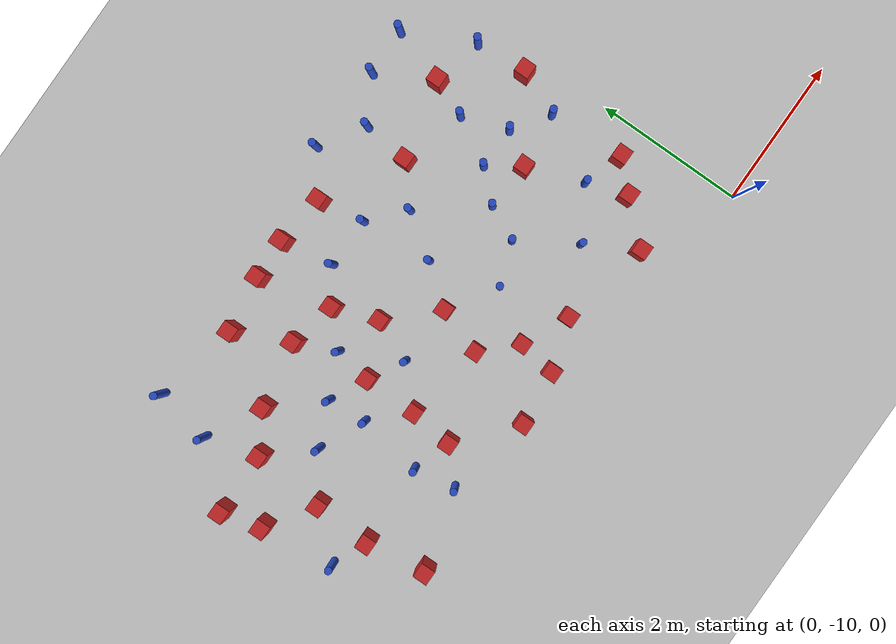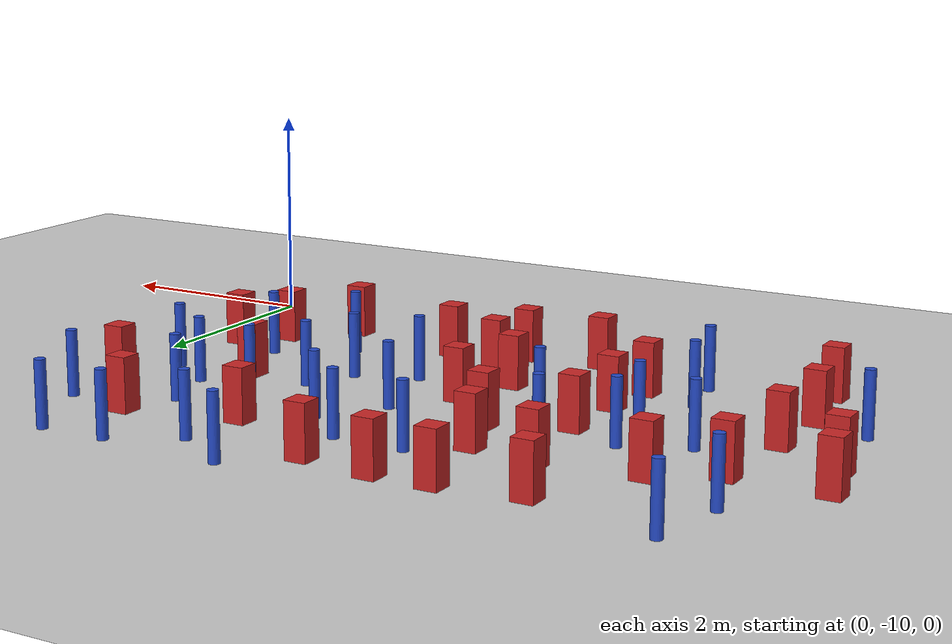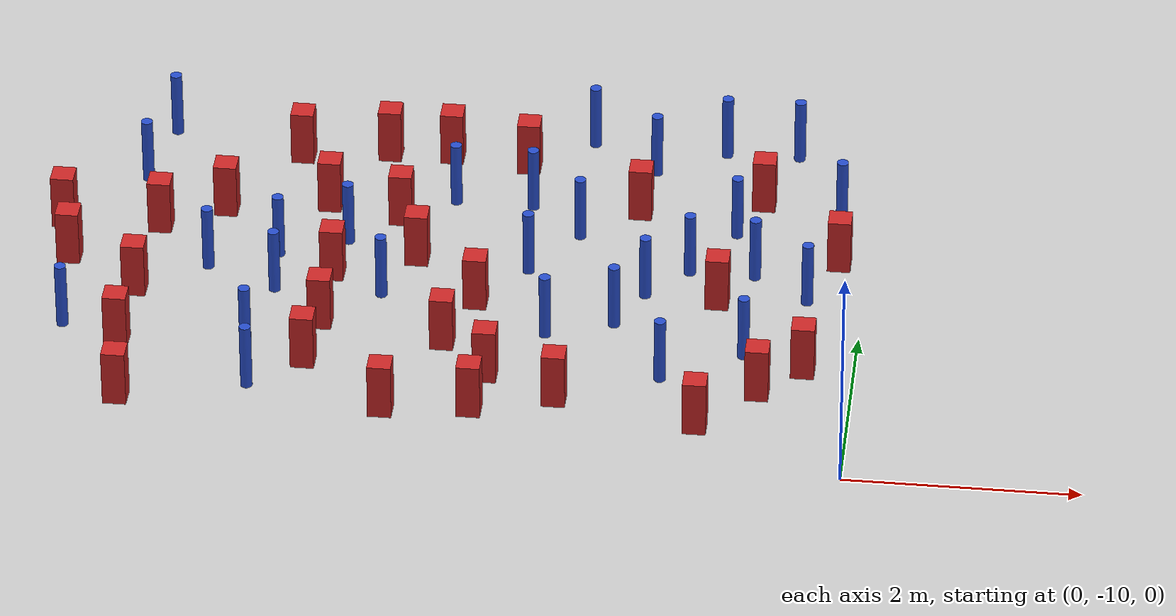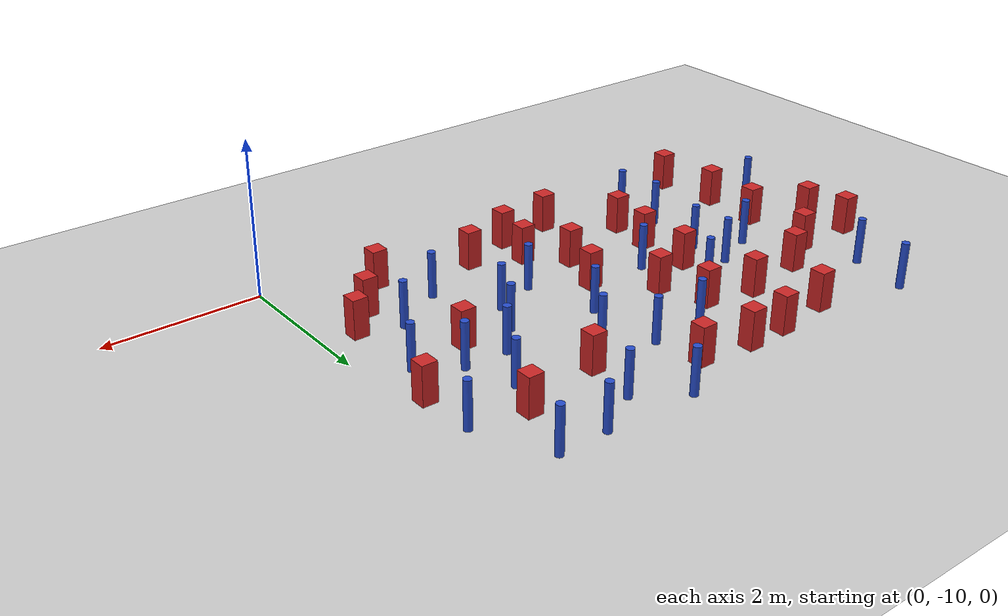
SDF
<sdf version="1.6">
 <world name="default">
  <model name="ground_plane">
   <static>1</static>
   <link name="link">
    <collision name="collision">
     <geometry><plane><normal>0 0 1</normal><size>100 100</size></plane></geometry>
     <surface><friction><ode><mu>100</mu><mu2>50</mu2></ode></friction></surface>
    </collision>
    <visual name="visual">
     <cast_shadows>0</cast_shadows>
     <geometry><plane><normal>0 0 1</normal><size>100 100</size></plane></geometry>
     <material>
      <ambient>1.0 1.0 1.0 1.0</ambient>
      <diffuse>0.8 0.8 0.8 1.0</diffuse>
      <specular>0.01 0.01 0.01 1.000000</specular>
     </material>
    </visual>
   </link>
  </model>
  <model name="pole_obstacle3">
   <static>true</static>
   <pose>-0.286532830113 -6.21267188489 7.38925637345e-09 -8.47170692799e-08 1.24976765096e-08 -1.74513093014e-07</pose>
   <link name="link">
    <pose>0 0 0.3 0 -0 0</pose>
    <inertial>
     <mass>1</mass>
     <inertia><ixx>0.145833</ixx><ixy>0</ixy><ixz>0</ixz><iyy>0.145833</iyy><iyz>0</iyz><izz>0.125</izz></inertia>
    </inertial>
    <collision name="collision">
     <geometry><cylinder><radius>0.05</radius><length>.6</length></cylinder></geometry>
    </collision>
    <visual name="visual">
     <geometry><cylinder><radius>0.05</radius><length>.6</length></cylinder></geometry>
     <material>
      <script><name>Gazebo/Blue</name><uri>file://media/materials/scripts/gazebo.material</uri></script>
     </material>
    </visual>
   </link>
  </model>
  <model name="pole_obstacle4">
   <static>true</static>
   <pose>-2.08851028054 -7.99821689099 7.38925637345e-09 -8.47170692793e-08 1.24976764454e-08 -1.74513093039e-07</pose>
   <link name="link">
    <pose>0 0 0.3 0 -0 0</pose>
    <inertial>
     <mass>1</mass>
     <inertia><ixx>0.145833</ixx><ixy>0</ixy><ixz>0</ixz><iyy>0.145833</iyy><iyz>0</iyz><izz>0.125</izz></inertia>
    </inertial>
    <collision name="collision">
     <geometry><cylinder><radius>0.05</radius><length>.6</length></cylinder></geometry>
    </collision>
    <visual name="visual">
     <geometry><cylinder><radius>0.05</radius><length>.6</length></cylinder></geometry>
     <material>
      <script><name>Gazebo/Blue</name><uri>file://media/materials/scripts/gazebo.material</uri></script>
     </material>
    </visual>
   </link>
  </model>
  <model name="pole_obstacle5">
   <static>true</static>
   <pose>-5.07244034275 -9.1984680818 7.38925637345e-09 -8.471706928e-08 1.24976765081e-08 -1.74513093015e-07</pose>
   <link name="link">
    <pose>0 0 0.3 0 -0 0</pose>
    <inertial>
     <mass>1</mass>
     <inertia><ixx>0.145833</ixx><ixy>0</ixy><ixz>0</ixz><iyy>0.145833</iyy><iyz>0</iyz><izz>0.125</izz></inertia>
    </inertial>
    <collision name="collision">
     <geometry><cylinder><radius>0.05</radius><length>.6</length></cylinder></geometry>
    </collision>
    <visual name="visual">
     <geometry><cylinder><radius>0.05</radius><length>.6</length></cylinder></geometry>
     <material>
      <script><name>Gazebo/Blue</name><uri>file://media/materials/scripts/gazebo.material</uri></script>
     </material>
    </visual>
   </link>
  </model>
  <model name="pole_obstacle9">
   <static>true</static>
   <pose>-6.22438378914 -5.47436945772 7.38925637345e-09 -8.47170692796e-08 1.24976764786e-08 -1.74513093032e-07</pose>
   <link name="link">
    <pose>0 0 0.3 0 -0 0</pose>
    <inertial>
     <mass>1</mass>
     <inertia><ixx>0.145833</ixx><ixy>0</ixy><ixz>0</ixz><iyy>0.145833</iyy><iyz>0</iyz><izz>0.125</izz></inertia>
    </inertial>
    <collision name="collision">
     <geometry><cylinder><radius>0.05</radius><length>.6</length></cylinder></geometry>
    </collision>
    <visual name="visual">
     <geometry><cylinder><radius>0.05</radius><length>.6</length></cylinder></geometry>
     <material>
      <script><name>Gazebo/Blue</name><uri>file://media/materials/scripts/gazebo.material</uri></script>
     </material>
    </visual>
   </link>
  </model>
  <model name="square_post_obstacle9">
   <static>true</static>
   <pose>-5.61328121798 -6.63471484839 1.91545236811e-07 -7.35059704564e-06 1.12565212e-07 2.39332434364e-05</pose>
   <link name="link">
    <pose>0 0 0.25 0 -0 0</pose>
    <inertial>
     <mass>100</mass>
     <inertia>
      <ixx>0.166667</ixx>
      <ixy>0</ixy>
      <ixz>0</ixz>
      <iyy>0.166667</iyy>
      <iyz>0</iyz>
      <izz>0.166667</izz>
     </inertia>
    </inertial>
    <collision name="collision"><geometry><box><size>.2 .2 .5</size></box></geometry></collision>
    <visual name="visual">
     <geometry><box><size>.2 .2 .5</size></box></geometry>
     <material>
      <script><name>Gazebo/Red</name><uri>file://media/materials/scripts/gazebo.material</uri></script>
     </material>
    </visual>
   </link>
  </model>
  <model name="square_post_obstacle14">
   <static>true</static>
   <pose>-3.87301807187 -7.210273516 1.91545236811e-07 -7.35059704564e-06 1.12565212e-07 2.39332434364e-05</pose>
   <link name="link">
    <pose>0 0 0.25 0 -0 0</pose>
    <inertial>
     <mass>100</mass>
     <inertia>
      <ixx>0.166667</ixx>
      <ixy>0</ixy>
      <ixz>0</ixz>
      <iyy>0.166667</iyy>
      <iyz>0</iyz>
      <izz>0.166667</izz>
     </inertia>
    </inertial>
    <collision name="collision"><geometry><box><size>.2 .2 .5</size></box></geometry></collision>
    <visual name="visual">
     <geometry><box><size>.2 .2 .5</size></box></geometry>
     <material>
      <script><name>Gazebo/Red</name><uri>file://media/materials/scripts/gazebo.material</uri></script>
     </material>
    </visual>
   </link>
  </model>
  <model name="pole_obstacle27">
   <static>true</static>
   <pose>-2.65658160371 -8.20769209882 7.38925637345e-09 -8.47170692793e-08 1.24976764408e-08 -1.74513093041e-07</pose>
   <link name="link">
    <pose>0 0 0.3 0 -0 0</pose>
    <inertial>
     <mass>1</mass>
     <inertia><ixx>0.145833</ixx><ixy>0</ixy><ixz>0</ixz><iyy>0.145833</iyy><iyz>0</iyz><izz>0.125</izz></inertia>
    </inertial>
    <collision name="collision">
     <geometry><cylinder><radius>0.05</radius><length>.6</length></cylinder></geometry>
    </collision>
    <visual name="visual">
     <geometry><cylinder><radius>0.05</radius><length>.6</length></cylinder></geometry>
     <material>
      <script><name>Gazebo/Blue</name><uri>file://media/materials/scripts/gazebo.material</uri></script>
     </material>
    </visual>
   </link>
  </model>
  <model name="pole_obstacle31">
   <static>true</static>
   <pose>-5.06959323173 -7.25917310305 7.38925637345e-09 -8.47170692796e-08 1.24976764786e-08 -1.74513093032e-07</pose>
   <link name="link">
    <pose>0 0 0.3 0 -0 0</pose>
    <inertial>
     <mass>1</mass>
     <inertia><ixx>0.145833</ixx><ixy>0</ixy><ixz>0</ixz><iyy>0.145833</iyy><iyz>0</iyz><izz>0.125</izz></inertia>
    </inertial>
    <collision name="collision">
     <geometry><cylinder><radius>0.05</radius><length>.6</length></cylinder></geometry>
    </collision>
    <visual name="visual">
     <geometry><cylinder><radius>0.05</radius><length>.6</length></cylinder></geometry>
     <material>
      <script><name>Gazebo/Blue</name><uri>file://media/materials/scripts/gazebo.material</uri></script>
     </material>
    </visual>
   </link>
  </model>
  <model name="pole_obstacle34">
   <static>true</static>
   <pose>-5.1619256779 -8.64343404357 7.38925637345e-09 -8.471706928e-08 1.24976765081e-08 -1.74513093015e-07</pose>
   <link name="link">
    <pose>0 0 0.3 0 -0 0</pose>
    <inertial>
     <mass>1</mass>
     <inertia><ixx>0.145833</ixx><ixy>0</ixy><ixz>0</ixz><iyy>0.145833</iyy><iyz>0</iyz><izz>0.125</izz></inertia>
    </inertial>
    <collision name="collision">
     <geometry><cylinder><radius>0.05</radius><length>.6</length></cylinder></geometry>
    </collision>
    <visual name="visual">
     <geometry><cylinder><radius>0.05</radius><length>.6</length></cylinder></geometry>
     <material>
      <script><name>Gazebo/Blue</name><uri>file://media/materials/scripts/gazebo.material</uri></script>
     </material>
    </visual>
   </link>
  </model>
  <model name="pole_obstacle37">
   <static>true</static>
   <pose>-6.75819118113 -8.48501316343 7.38925637345e-09 -8.471706928e-08 1.24976765081e-08 -1.74513093015e-07</pose>
   <link name="link">
    <pose>0 0 0.3 0 -0 0</pose>
    <inertial>
     <mass>1</mass>
     <inertia><ixx>0.145833</ixx><ixy>0</ixy><ixz>0</ixz><iyy>0.145833</iyy><iyz>0</iyz><izz>0.125</izz></inertia>
    </inertial>
    <collision name="collision">
     <geometry><cylinder><radius>0.05</radius><length>.6</length></cylinder></geometry>
    </collision>
    <visual name="visual">
     <geometry><cylinder><radius>0.05</radius><length>.6</length></cylinder></geometry>
     <material>
      <script><name>Gazebo/Blue</name><uri>file://media/materials/scripts/gazebo.material</uri></script>
     </material>
    </visual>
   </link>
  </model>
  <model name="pole_obstacle40">
   <static>true</static>
   <pose>-1.8678572007 -7.54005335014 7.38925637345e-09 -8.47170692799e-08 1.24976765033e-08 -1.74513093018e-07</pose>
   <link name="link">
    <pose>0 0 0.3 0 -0 0</pose>
    <inertial>
     <mass>1</mass>
     <inertia><ixx>0.145833</ixx><ixy>0</ixy><ixz>0</ixz><iyy>0.145833</iyy><iyz>0</iyz><izz>0.125</izz></inertia>
    </inertial>
    <collision name="collision">
     <geometry><cylinder><radius>0.05</radius><length>.6</length></cylinder></geometry>
    </collision>
    <visual name="visual">
     <geometry><cylinder><radius>0.05</radius><length>.6</length></cylinder></geometry>
     <material>
      <script><name>Gazebo/Blue</name><uri>file://media/materials/scripts/gazebo.material</uri></script>
     </material>
    </visual>
   </link>
  </model>
  <model name="pole_obstacle42">
   <static>true</static>
   <pose>-2.51475774408 -6.7155393524 7.38925637345e-09 -8.47170692798e-08 1.24976765033e-08 -1.74513093019e-07</pose>
   <link name="link">
    <pose>0 0 0.3 0 -0 0</pose>
    <inertial>
     <mass>1</mass>
     <inertia><ixx>0.145833</ixx><ixy>0</ixy><ixz>0</ixz><iyy>0.145833</iyy><iyz>0</iyz><izz>0.125</izz></inertia>
    </inertial>
    <collision name="collision">
     <geometry><cylinder><radius>0.05</radius><length>.6</length></cylinder></geometry>
    </collision>
    <visual name="visual">
     <geometry><cylinder><radius>0.05</radius><length>.6</length></cylinder></geometry>
     <material>
      <script><name>Gazebo/Blue</name><uri>file://media/materials/scripts/gazebo.material</uri></script>
     </material>
    </visual>
   </link>
  </model>
  <model name="square_post_obstacle32">
   <static>true</static>
   <pose>-4.6437594725 -8.8081123449 1.91545236811e-07 -7.35059704564e-06 1.12565212e-07 2.39332434364e-05</pose>
   <link name="link">
    <pose>0 0 0.25 0 -0 0</pose>
    <inertial>
     <mass>100</mass>
     <inertia>
      <ixx>0.166667</ixx>
      <ixy>0</ixy>
      <ixz>0</ixz>
      <iyy>0.166667</iyy>
      <iyz>0</iyz>
      <izz>0.166667</izz>
     </inertia>
    </inertial>
    <collision name="collision"><geometry><box><size>.2 .2 .5</size></box></geometry></collision>
    <visual name="visual">
     <geometry><box><size>.2 .2 .5</size></box></geometry>
     <material>
      <script><name>Gazebo/Red</name><uri>file://media/materials/scripts/gazebo.material</uri></script>
     </material>
    </visual>
   </link>
  </model>
  <model name="pole_obstacle43">
   <static>true</static>
   <pose>-2.90140061625 -7.28194770969 7.38925637345e-09 -8.47170692798e-08 1.24976765033e-08 -1.74513093019e-07</pose>
   <link name="link">
    <pose>0 0 0.3 0 -0 0</pose>
    <inertial>
     <mass>1</mass>
     <inertia><ixx>0.145833</ixx><ixy>0</ixy><ixz>0</ixz><iyy>0.145833</iyy><iyz>0</iyz><izz>0.125</izz></inertia>
    </inertial>
    <collision name="collision">
     <geometry><cylinder><radius>0.05</radius><length>.6</length></cylinder></geometry>
    </collision>
    <visual name="visual">
     <geometry><cylinder><radius>0.05</radius><length>.6</length></cylinder></geometry>
     <material>
      <script><name>Gazebo/Blue</name><uri>file://media/materials/scripts/gazebo.material</uri></script>
     </material>
    </visual>
   </link>
  </model>
  <model name="square_post_obstacle36">
   <static>true</static>
   <pose>-1.24274483407 -7.58987991676 1.91545236811e-07 -7.35059704564e-06 1.12565212e-07 2.39332434364e-05</pose>
   <link name="link">
    <pose>0 0 0.25 0 -0 0</pose>
    <inertial>
     <mass>100</mass>
     <inertia>
      <ixx>0.166667</ixx>
      <ixy>0</ixy>
      <ixz>0</ixz>
      <iyy>0.166667</iyy>
      <iyz>0</iyz>
      <izz>0.166667</izz>
     </inertia>
    </inertial>
    <collision name="collision"><geometry><box><size>.2 .2 .5</size></box></geometry></collision>
    <visual name="visual">
     <geometry><box><size>.2 .2 .5</size></box></geometry>
     <material>
      <script><name>Gazebo/Red</name><uri>file://media/materials/scripts/gazebo.material</uri></script>
     </material>
    </visual>
   </link>
  </model>
  <model name="pole_obstacle48">
   <static>true</static>
   <pose>-2.96846353193 -6.31269912293 7.38925637345e-09 -8.47170692798e-08 1.24976765033e-08 -1.74513093019e-07</pose>
   <link name="link">
    <pose>0 0 0.3 0 -0 0</pose>
    <inertial>
     <mass>1</mass>
     <inertia><ixx>0.145833</ixx><ixy>0</ixy><ixz>0</ixz><iyy>0.145833</iyy><iyz>0</iyz><izz>0.125</izz></inertia>
    </inertial>
    <collision name="collision">
     <geometry><cylinder><radius>0.05</radius><length>.6</length></cylinder></geometry>
    </collision>
    <visual name="visual">
     <geometry><cylinder><radius>0.05</radius><length>.6</length></cylinder></geometry>
     <material>
      <script><name>Gazebo/Blue</name><uri>file://media/materials/scripts/gazebo.material</uri></script>
     </material>
    </visual>
   </link>
  </model>
  <model name="pole_obstacle49">
   <static>true</static>
   <pose>-1.51936619969 -7.16205877304 7.38925637345e-09 -8.47170692799e-08 1.24976765033e-08 -1.74513093018e-07</pose>
   <link name="link">
    <pose>0 0 0.3 0 -0 0</pose>
    <inertial>
     <mass>1</mass>
     <inertia><ixx>0.145833</ixx><ixy>0</ixy><ixz>0</ixz><iyy>0.145833</iyy><iyz>0</iyz><izz>0.125</izz></inertia>
    </inertial>
    <collision name="collision">
     <geometry><cylinder><radius>0.05</radius><length>.6</length></cylinder></geometry>
    </collision>
    <visual name="visual">
     <geometry><cylinder><radius>0.05</radius><length>.6</length></cylinder></geometry>
     <material>
      <script><name>Gazebo/Blue</name><uri>file://media/materials/scripts/gazebo.material</uri></script>
     </material>
    </visual>
   </link>
  </model>
  <model name="square_post_obstacle40">
   <static>true</static>
   <pose>-5.06158124552 -5.74783284415 1.91545236811e-07 -7.35059704564e-06 1.12565212e-07 2.39332434364e-05</pose>
   <link name="link">
    <pose>0 0 0.25 0 -0 0</pose>
    <inertial>
     <mass>100</mass>
     <inertia>
      <ixx>0.166667</ixx>
      <ixy>0</ixy>
      <ixz>0</ixz>
      <iyy>0.166667</iyy>
      <iyz>0</iyz>
      <izz>0.166667</izz>
     </inertia>
    </inertial>
    <collision name="collision"><geometry><box><size>.2 .2 .5</size></box></geometry></collision>
    <visual name="visual">
     <geometry><box><size>.2 .2 .5</size></box></geometry>
     <material>
      <script><name>Gazebo/Red</name><uri>file://media/materials/scripts/gazebo.material</uri></script>
     </material>
    </visual>
   </link>
  </model>
  <model name="square_post_obstacle41">
   <static>true</static>
   <pose>-0.250888118481 -6.90935245224 1.91545236811e-07 -7.35059704564e-06 1.12565212e-07 2.39332434364e-05</pose>
   <link name="link">
    <pose>0 0 0.25 0 -0 0</pose>
    <inertial>
     <mass>100</mass>
     <inertia>
      <ixx>0.166667</ixx>
      <ixy>0</ixy>
      <ixz>0</ixz>
      <iyy>0.166667</iyy>
      <iyz>0</iyz>
      <izz>0.166667</izz>
     </inertia>
    </inertial>
    <collision name="collision"><geometry><box><size>.2 .2 .5</size></box></geometry></collision>
    <visual name="visual">
     <geometry><box><size>.2 .2 .5</size></box></geometry>
     <material>
      <script><name>Gazebo/Red</name><uri>file://media/materials/scripts/gazebo.material</uri></script>
     </material>
    </visual>
   </link>
  </model>
  <model name="square_post_obstacle45">
   <static>true</static>
   <pose>-4.72384394061 -6.47394857997 1.91545236811e-07 -7.35059704564e-06 1.12565212e-07 2.39332434364e-05</pose>
   <link name="link">
    <pose>0 0 0.25 0 -0 0</pose>
    <inertial>
     <mass>100</mass>
     <inertia>
      <ixx>0.166667</ixx>
      <ixy>0</ixy>
      <ixz>0</ixz>
      <iyy>0.166667</iyy>
      <iyz>0</iyz>
      <izz>0.166667</izz>
     </inertia>
    </inertial>
    <collision name="collision"><geometry><box><size>.2 .2 .5</size></box></geometry></collision>
    <visual name="visual">
     <geometry><box><size>.2 .2 .5</size></box></geometry>
     <material>
      <script><name>Gazebo/Red</name><uri>file://media/materials/scripts/gazebo.material</uri></script>
     </material>
    </visual>
   </link>
  </model>
  <model name="square_post_obstacle47">
   <static>true</static>
   <pose>-3.75698951049 -5.62028620985 1.91545236811e-07 -7.35059704564e-06 1.12565212e-07 2.39332434364e-05</pose>
   <link name="link">
    <pose>0 0 0.25 0 -0 0</pose>
    <inertial>
     <mass>100</mass>
     <inertia>
      <ixx>0.166667</ixx>
      <ixy>0</ixy>
      <ixz>0</ixz>
      <iyy>0.166667</iyy>
      <iyz>0</iyz>
      <izz>0.166667</izz>
     </inertia>
    </inertial>
    <collision name="collision"><geometry><box><size>.2 .2 .5</size></box></geometry></collision>
    <visual name="visual">
     <geometry><box><size>.2 .2 .5</size></box></geometry>
     <material>
      <script><name>Gazebo/Red</name><uri>file://media/materials/scripts/gazebo.material</uri></script>
     </material>
    </visual>
   </link>
  </model>
  <model name="pole_obstacle65">
   <static>true</static>
   <pose>-1.62433108443 -8.74397455599 7.38925637345e-09 -8.47170692798e-08 1.24976764881e-08 -1.74513093027e-07</pose>
   <link name="link">
    <pose>0 0 0.3 0 -0 0</pose>
    <inertial>
     <mass>1</mass>
     <inertia><ixx>0.145833</ixx><ixy>0</ixy><ixz>0</ixz><iyy>0.145833</iyy><iyz>0</iyz><izz>0.125</izz></inertia>
    </inertial>
    <collision name="collision">
     <geometry><cylinder><radius>0.05</radius><length>.6</length></cylinder></geometry>
    </collision>
    <visual name="visual">
     <geometry><cylinder><radius>0.05</radius><length>.6</length></cylinder></geometry>
     <material>
      <script><name>Gazebo/Blue</name><uri>file://media/materials/scripts/gazebo.material</uri></script>
     </material>
    </visual>
   </link>
  </model>
  <model name="pole_obstacle67">
   <static>true</static>
   <pose>-5.03378330368 -7.78260591415 7.38925637345e-09 -8.47170692796e-08 1.24976764786e-08 -1.74513093032e-07</pose>
   <link name="link">
    <pose>0 0 0.3 0 -0 0</pose>
    <inertial>
     <mass>1</mass>
     <inertia><ixx>0.145833</ixx><ixy>0</ixy><ixz>0</ixz><iyy>0.145833</iyy><iyz>0</iyz><izz>0.125</izz></inertia>
    </inertial>
    <collision name="collision">
     <geometry><cylinder><radius>0.05</radius><length>.6</length></cylinder></geometry>
    </collision>
    <visual name="visual">
     <geometry><cylinder><radius>0.05</radius><length>.6</length></cylinder></geometry>
     <material>
      <script><name>Gazebo/Blue</name><uri>file://media/materials/scripts/gazebo.material</uri></script>
     </material>
    </visual>
   </link>
  </model>
  <model name="square_post_obstacle57">
   <static>true</static>
   <pose>-3.0917251226 -8.85280388952 1.91545236811e-07 -7.35059704564e-06 1.12565212e-07 2.39332434364e-05</pose>
   <link name="link">
    <pose>0 0 0.25 0 -0 0</pose>
    <inertial>
     <mass>100</mass>
     <inertia>
      <ixx>0.166667</ixx>
      <ixy>0</ixy>
      <ixz>0</ixz>
      <iyy>0.166667</iyy>
      <iyz>0</iyz>
      <izz>0.166667</izz>
     </inertia>
    </inertial>
    <collision name="collision"><geometry><box><size>.2 .2 .5</size></box></geometry></collision>
    <visual name="visual">
     <geometry><box><size>.2 .2 .5</size></box></geometry>
     <material>
      <script><name>Gazebo/Red</name><uri>file://media/materials/scripts/gazebo.material</uri></script>
     </material>
    </visual>
   </link>
  </model>
  <model name="square_post_obstacle64">
   <static>true</static>
   <pose>-3.50725362793 -8.42364837594 1.91545236811e-07 -7.35059704564e-06 1.12565212e-07 2.39332434364e-05</pose>
   <link name="link">
    <pose>0 0 0.25 0 -0 0</pose>
    <inertial>
     <mass>100</mass>
     <inertia>
      <ixx>0.166667</ixx>
      <ixy>0</ixy>
      <ixz>0</ixz>
      <iyy>0.166667</iyy>
      <iyz>0</iyz>
      <izz>0.166667</izz>
     </inertia>
    </inertial>
    <collision name="collision"><geometry><box><size>.2 .2 .5</size></box></geometry></collision>
    <visual name="visual">
     <geometry><box><size>.2 .2 .5</size></box></geometry>
     <material>
      <script><name>Gazebo/Red</name><uri>file://media/materials/scripts/gazebo.material</uri></script>
     </material>
    </visual>
   </link>
  </model>
  <model name="square_post_obstacle66">
   <static>true</static>
   <pose>-6.257573936 -8.67982564111 1.91545236811e-07 -7.35059704564e-06 1.12565212e-07 2.39332434364e-05</pose>
   <link name="link">
    <pose>0 0 0.25 0 -0 0</pose>
    <inertial>
     <mass>100</mass>
     <inertia>
      <ixx>0.166667</ixx>
      <ixy>0</ixy>
      <ixz>0</ixz>
      <iyy>0.166667</iyy>
      <iyz>0</iyz>
      <izz>0.166667</izz>
     </inertia>
    </inertial>
    <collision name="collision"><geometry><box><size>.2 .2 .5</size></box></geometry></collision>
    <visual name="visual">
     <geometry><box><size>.2 .2 .5</size></box></geometry>
     <material>
      <script><name>Gazebo/Red</name><uri>file://media/materials/scripts/gazebo.material</uri></script>
     </material>
    </visual>
   </link>
  </model>
  <model name="pole_obstacle78">
   <static>true</static>
   <pose>-3.64310096105 -6.30392233489 7.38925637345e-09 -8.47170692798e-08 1.24976765033e-08 -1.74513093019e-07</pose>
   <link name="link">
    <pose>0 0 0.3 0 -0 0</pose>
    <inertial>
     <mass>1</mass>
     <inertia><ixx>0.145833</ixx><ixy>0</ixy><ixz>0</ixz><iyy>0.145833</iyy><iyz>0</iyz><izz>0.125</izz></inertia>
    </inertial>
    <collision name="collision">
     <geometry><cylinder><radius>0.05</radius><length>.6</length></cylinder></geometry>
    </collision>
    <visual name="visual">
     <geometry><cylinder><radius>0.05</radius><length>.6</length></cylinder></geometry>
     <material>
      <script><name>Gazebo/Blue</name><uri>file://media/materials/scripts/gazebo.material</uri></script>
     </material>
    </visual>
   </link>
  </model>
  <model name="pole_obstacle84">
   <static>true</static>
   <pose>-0.957178390832 -7.17100986073 7.38925637345e-09 -8.47170692799e-08 1.2497676509e-08 -1.74513093015e-07</pose>
   <link name="link">
    <pose>0 0 0.3 0 -0 0</pose>
    <inertial>
     <mass>1</mass>
     <inertia><ixx>0.145833</ixx><ixy>0</ixy><ixz>0</ixz><iyy>0.145833</iyy><iyz>0</iyz><izz>0.125</izz></inertia>
    </inertial>
    <collision name="collision">
     <geometry><cylinder><radius>0.05</radius><length>.6</length></cylinder></geometry>
    </collision>
    <visual name="visual">
     <geometry><cylinder><radius>0.05</radius><length>.6</length></cylinder></geometry>
     <material>
      <script><name>Gazebo/Blue</name><uri>file://media/materials/scripts/gazebo.material</uri></script>
     </material>
    </visual>
   </link>
  </model>
  <model name="square_post_obstacle85">
   <static>true</static>
   <pose>-4.57660462501 -8.22993537688 1.91545236811e-07 -7.35059704564e-06 1.12565212e-07 2.39332434364e-05</pose>
   <link name="link">
    <pose>0 0 0.25 0 -0 0</pose>
    <inertial>
     <mass>100</mass>
     <inertia>
      <ixx>0.166667</ixx>
      <ixy>0</ixy>
      <ixz>0</ixz>
      <iyy>0.166667</iyy>
      <iyz>0</iyz>
      <izz>0.166667</izz>
     </inertia>
    </inertial>
    <collision name="collision"><geometry><box><size>.2 .2 .5</size></box></geometry></collision>
    <visual name="visual">
     <geometry><box><size>.2 .2 .5</size></box></geometry>
     <material>
      <script><name>Gazebo/Red</name><uri>file://media/materials/scripts/gazebo.material</uri></script>
     </material>
    </visual>
   </link>
  </model>
  <model name="square_post_obstacle91">
   <static>true</static>
   <pose>-0.971007164723 -6.07107753039 1.91545236811e-07 -7.35059704564e-06 1.12565212e-07 2.39332434364e-05</pose>
   <link name="link">
    <pose>0 0 0.25 0 -0 0</pose>
    <inertial>
     <mass>100</mass>
     <inertia>
      <ixx>0.166667</ixx>
      <ixy>0</ixy>
      <ixz>0</ixz>
      <iyy>0.166667</iyy>
      <iyz>0</iyz>
      <izz>0.166667</izz>
     </inertia>
    </inertial>
    <collision name="collision"><geometry><box><size>.2 .2 .5</size></box></geometry></collision>
    <visual name="visual">
     <geometry><box><size>.2 .2 .5</size></box></geometry>
     <material>
      <script><name>Gazebo/Red</name><uri>file://media/materials/scripts/gazebo.material</uri></script>
     </material>
    </visual>
   </link>
  </model>
  <model name="square_post_obstacle101">
   <static>true</static>
   <pose>-4.30361724133 -5.63852997986 1.91545236811e-07 -7.35059704564e-06 1.12565212e-07 2.39332434364e-05</pose>
   <link name="link">
    <pose>0 0 0.25 0 -0 0</pose>
    <inertial>
     <mass>100</mass>
     <inertia>
      <ixx>0.166667</ixx>
      <ixy>0</ixy>
      <ixz>0</ixz>
      <iyy>0.166667</iyy>
      <iyz>0</iyz>
      <izz>0.166667</izz>
     </inertia>
    </inertial>
    <collision name="collision"><geometry><box><size>.2 .2 .5</size></box></geometry></collision>
    <visual name="visual">
     <geometry><box><size>.2 .2 .5</size></box></geometry>
     <material>
      <script><name>Gazebo/Red</name><uri>file://media/materials/scripts/gazebo.material</uri></script>
     </material>
    </visual>
   </link>
  </model>
  <model name="pole_obstacle108">
   <static>true</static>
   <pose>-1.95162576598 -5.66853087811 7.38925637345e-09 -8.47170692799e-08 1.2497676507e-08 -1.74513093016e-07</pose>
   <link name="link">
    <pose>0 0 0.3 0 -0 0</pose>
    <inertial>
     <mass>1</mass>
     <inertia><ixx>0.145833</ixx><ixy>0</ixy><ixz>0</ixz><iyy>0.145833</iyy><iyz>0</iyz><izz>0.125</izz></inertia>
    </inertial>
    <collision name="collision">
     <geometry><cylinder><radius>0.05</radius><length>.6</length></cylinder></geometry>
    </collision>
    <visual name="visual">
     <geometry><cylinder><radius>0.05</radius><length>.6</length></cylinder></geometry>
     <material>
      <script><name>Gazebo/Blue</name><uri>file://media/materials/scripts/gazebo.material</uri></script>
     </material>
    </visual>
   </link>
  </model>
  <model name="square_post_obstacle106">
   <static>true</static>
   <pose>-6.14487959214 -6.94677643695 1.91545236811e-07 -7.35059704564e-06 1.12565212e-07 2.39332434364e-05</pose>
   <link name="link">
    <pose>0 0 0.25 0 -0 0</pose>
    <inertial>
     <mass>100</mass>
     <inertia>
      <ixx>0.166667</ixx>
      <ixy>0</ixy>
      <ixz>0</ixz>
      <iyy>0.166667</iyy>
      <iyz>0</iyz>
      <izz>0.166667</izz>
     </inertia>
    </inertial>
    <collision name="collision"><geometry><box><size>.2 .2 .5</size></box></geometry></collision>
    <visual name="visual">
     <geometry><box><size>.2 .2 .5</size></box></geometry>
     <material>
      <script><name>Gazebo/Red</name><uri>file://media/materials/scripts/gazebo.material</uri></script>
     </material>
    </visual>
   </link>
  </model>
  <model name="square_post_obstacle107">
   <static>true</static>
   <pose>-3.90266766539 -9.43903984513 1.91545236811e-07 -7.35059704564e-06 1.12565212e-07 2.39332434364e-05</pose>
   <link name="link">
    <pose>0 0 0.25 0 -0 0</pose>
    <inertial>
     <mass>100</mass>
     <inertia>
      <ixx>0.166667</ixx>
      <ixy>0</ixy>
      <ixz>0</ixz>
      <iyy>0.166667</iyy>
      <iyz>0</iyz>
      <izz>0.166667</izz>
     </inertia>
    </inertial>
    <collision name="collision"><geometry><box><size>.2 .2 .5</size></box></geometry></collision>
    <visual name="visual">
     <geometry><box><size>.2 .2 .5</size></box></geometry>
     <material>
      <script><name>Gazebo/Red</name><uri>file://media/materials/scripts/gazebo.material</uri></script>
     </material>
    </visual>
   </link>
  </model>
  <model name="pole_obstacle112">
   <static>true</static>
   <pose>-1.36255652613 -5.32771840145 7.38925637345e-09 -8.47170692799e-08 1.24976765033e-08 -1.74513093018e-07</pose>
   <link name="link">
    <pose>0 0 0.3 0 -0 0</pose>
    <inertial>
     <mass>1</mass>
     <inertia><ixx>0.145833</ixx><ixy>0</ixy><ixz>0</ixz><iyy>0.145833</iyy><iyz>0</iyz><izz>0.125</izz></inertia>
    </inertial>
    <collision name="collision">
     <geometry><cylinder><radius>0.05</radius><length>.6</length></cylinder></geometry>
    </collision>
    <visual name="visual">
     <geometry><cylinder><radius>0.05</radius><length>.6</length></cylinder></geometry>
     <material>
      <script><name>Gazebo/Blue</name><uri>file://media/materials/scripts/gazebo.material</uri></script>
     </material>
    </visual>
   </link>
  </model>
  <model name="square_post_obstacle111">
   <static>true</static>
   <pose>-6.22340323108 -7.91022410932 1.91545236811e-07 -7.35059704564e-06 1.12565212e-07 2.39332434364e-05</pose>
   <link name="link">
    <pose>0 0 0.25 0 -0 0</pose>
    <inertial>
     <mass>100</mass>
     <inertia>
      <ixx>0.166667</ixx>
      <ixy>0</ixy>
      <ixz>0</ixz>
      <iyy>0.166667</iyy>
      <iyz>0</iyz>
      <izz>0.166667</izz>
     </inertia>
    </inertial>
    <collision name="collision"><geometry><box><size>.2 .2 .5</size></box></geometry></collision>
    <visual name="visual">
     <geometry><box><size>.2 .2 .5</size></box></geometry>
     <material>
      <script><name>Gazebo/Red</name><uri>file://media/materials/scripts/gazebo.material</uri></script>
     </material>
    </visual>
   </link>
  </model>
  <model name="square_post_obstacle116">
   <static>true</static>
   <pose>-3.06910853028 -5.70859727033 1.91545236811e-07 -7.35059704564e-06 1.12565212e-07 2.39332434364e-05</pose>
   <link name="link">
    <pose>0 0 0.25 0 -0 0</pose>
    <inertial>
     <mass>100</mass>
     <inertia>
      <ixx>0.166667</ixx>
      <ixy>0</ixy>
      <ixz>0</ixz>
      <iyy>0.166667</iyy>
      <iyz>0</iyz>
      <izz>0.166667</izz>
     </inertia>
    </inertial>
    <collision name="collision"><geometry><box><size>.2 .2 .5</size></box></geometry></collision>
    <visual name="visual">
     <geometry><box><size>.2 .2 .5</size></box></geometry>
     <material>
      <script><name>Gazebo/Red</name><uri>file://media/materials/scripts/gazebo.material</uri></script>
     </material>
    </visual>
   </link>
  </model>
  <model name="square_post_obstacle117">
   <static>true</static>
   <pose>-3.16539178634 -9.36030528622 1.91545236811e-07 -7.35059704564e-06 1.12565212e-07 2.39332434364e-05</pose>
   <link name="link">
    <pose>0 0 0.25 0 -0 0</pose>
    <inertial>
     <mass>100</mass>
     <inertia>
      <ixx>0.166667</ixx>
      <ixy>0</ixy>
      <ixz>0</ixz>
      <iyy>0.166667</iyy>
      <iyz>0</iyz>
      <izz>0.166667</izz>
     </inertia>
    </inertial>
    <collision name="collision"><geometry><box><size>.2 .2 .5</size></box></geometry></collision>
    <visual name="visual">
     <geometry><box><size>.2 .2 .5</size></box></geometry>
     <material>
      <script><name>Gazebo/Red</name><uri>file://media/materials/scripts/gazebo.material</uri></script>
     </material>
    </visual>
   </link>
  </model>
  <model name="square_post_obstacle122">
   <static>true</static>
   <pose>-2.47578755836 -9.1397418726 1.91545236811e-07 -7.35059704564e-06 1.12565212e-07 2.39332434364e-05</pose>
   <link name="link">
    <pose>0 0 0.25 0 -0 0</pose>
    <inertial>
     <mass>100</mass>
     <inertia>
      <ixx>0.166667</ixx>
      <ixy>0</ixy>
      <ixz>0</ixz>
      <iyy>0.166667</iyy>
      <iyz>0</iyz>
      <izz>0.166667</izz>
     </inertia>
    </inertial>
    <collision name="collision"><geometry><box><size>.2 .2 .5</size></box></geometry></collision>
    <visual name="visual">
     <geometry><box><size>.2 .2 .5</size></box></geometry>
     <material>
      <script><name>Gazebo/Red</name><uri>file://media/materials/scripts/gazebo.material</uri></script>
     </material>
    </visual>
   </link>
  </model>
  <model name="square_post_obstacle131">
   <static>true</static>
   <pose>-1.26534838294 -9.40108813432 1.91545236811e-07 -7.35059704564e-06 1.12565212e-07 2.39332434364e-05</pose>
   <link name="link">
    <pose>0 0 0.25 0 -0 0</pose>
    <inertial>
     <mass>100</mass>
     <inertia>
      <ixx>0.166667</ixx>
      <ixy>0</ixy>
      <ixz>0</ixz>
      <iyy>0.166667</iyy>
      <iyz>0</iyz>
      <izz>0.166667</izz>
     </inertia>
    </inertial>
    <collision name="collision"><geometry><box><size>.2 .2 .5</size></box></geometry></collision>
    <visual name="visual">
     <geometry><box><size>.2 .2 .5</size></box></geometry>
     <material>
      <script><name>Gazebo/Red</name><uri>file://media/materials/scripts/gazebo.material</uri></script>
     </material>
    </visual>
   </link>
  </model>
  <model name="square_post_obstacle134">
   <static>true</static>
   <pose>-3.29774649587 -7.80258098426 1.91545236811e-07 -7.35059704564e-06 1.12565212e-07 2.39332434364e-05</pose>
   <link name="link">
    <pose>0 0 0.25 0 -0 0</pose>
    <inertial>
     <mass>100</mass>
     <inertia>
      <ixx>0.166667</ixx>
      <ixy>0</ixy>
      <ixz>0</ixz>
      <iyy>0.166667</iyy>
      <iyz>0</iyz>
      <izz>0.166667</izz>
     </inertia>
    </inertial>
    <collision name="collision"><geometry><box><size>.2 .2 .5</size></box></geometry></collision>
    <visual name="visual">
     <geometry><box><size>.2 .2 .5</size></box></geometry>
     <material>
      <script><name>Gazebo/Red</name><uri>file://media/materials/scripts/gazebo.material</uri></script>
     </material>
    </visual>
   </link>
  </model>
  <model name="square_post_obstacle135">
   <static>true</static>
   <pose>-4.56794497632 -7.50665923051 1.91545236811e-07 -7.35059704564e-06 1.12565212e-07 2.39332434364e-05</pose>
   <link name="link">
    <pose>0 0 0.25 0 -0 0</pose>
    <inertial>
     <mass>100</mass>
     <inertia>
      <ixx>0.166667</ixx>
      <ixy>0</ixy>
      <ixz>0</ixz>
      <iyy>0.166667</iyy>
      <iyz>0</iyz>
      <izz>0.166667</izz>
     </inertia>
    </inertial>
    <collision name="collision"><geometry><box><size>.2 .2 .5</size></box></geometry></collision>
    <visual name="visual">
     <geometry><box><size>.2 .2 .5</size></box></geometry>
     <material>
      <script><name>Gazebo/Red</name><uri>file://media/materials/scripts/gazebo.material</uri></script>
     </material>
    </visual>
   </link>
  </model>
  <model name="pole_obstacle155">
   <static>true</static>
   <pose>-5.64784667991 -7.50350563528 7.38925637345e-09 -8.47170692796e-08 1.24976764786e-08 -1.74513093032e-07</pose>
   <link name="link">
    <pose>0 0 0.3 0 -0 0</pose>
    <inertial>
     <mass>1</mass>
     <inertia><ixx>0.145833</ixx><ixy>0</ixy><ixz>0</ixz><iyy>0.145833</iyy><iyz>0</iyz><izz>0.125</izz></inertia>
    </inertial>
    <collision name="collision">
     <geometry><cylinder><radius>0.05</radius><length>.6</length></cylinder></geometry>
    </collision>
    <visual name="visual">
     <geometry><cylinder><radius>0.05</radius><length>.6</length></cylinder></geometry>
     <material>
      <script><name>Gazebo/Blue</name><uri>file://media/materials/scripts/gazebo.material</uri></script>
     </material>
    </visual>
   </link>
  </model>
  <model name="pole_obstacle158">
   <static>true</static>
   <pose>-1.16585708767 -6.55467579378 7.38925637345e-09 -8.47170692799e-08 1.24976765033e-08 -1.74513093018e-07</pose>
   <link name="link">
    <pose>0 0 0.3 0 -0 0</pose>
    <inertial>
     <mass>1</mass>
     <inertia><ixx>0.145833</ixx><ixy>0</ixy><ixz>0</ixz><iyy>0.145833</iyy><iyz>0</iyz><izz>0.125</izz></inertia>
    </inertial>
    <collision name="collision">
     <geometry><cylinder><radius>0.05</radius><length>.6</length></cylinder></geometry>
    </collision>
    <visual name="visual">
     <geometry><cylinder><radius>0.05</radius><length>.6</length></cylinder></geometry>
     <material>
      <script><name>Gazebo/Blue</name><uri>file://media/materials/scripts/gazebo.material</uri></script>
     </material>
    </visual>
   </link>
  </model>
  <model name="square_post_obstacle154">
   <static>true</static>
   <pose>-2.02763414815 -6.30942202889 1.91545236811e-07 -7.35059704564e-06 1.12565212e-07 2.39332434364e-05</pose>
   <link name="link">
    <pose>0 0 0.25 0 -0 0</pose>
    <inertial>
     <mass>100</mass>
     <inertia>
      <ixx>0.166667</ixx>
      <ixy>0</ixy>
      <ixz>0</ixz>
      <iyy>0.166667</iyy>
      <iyz>0</iyz>
      <izz>0.166667</izz>
     </inertia>
    </inertial>
    <collision name="collision"><geometry><box><size>.2 .2 .5</size></box></geometry></collision>
    <visual name="visual">
     <geometry><box><size>.2 .2 .5</size></box></geometry>
     <material>
      <script><name>Gazebo/Red</name><uri>file://media/materials/scripts/gazebo.material</uri></script>
     </material>
    </visual>
   </link>
  </model>
  <model name="pole_obstacle166">
   <static>true</static>
   <pose>-0.953097794303 -8.34191826974 7.38925637345e-09 -8.47170692797e-08 1.24976764802e-08 -1.74513093032e-07</pose>
   <link name="link">
    <pose>0 0 0.3 0 -0 0</pose>
    <inertial>
     <mass>1</mass>
     <inertia><ixx>0.145833</ixx><ixy>0</ixy><ixz>0</ixz><iyy>0.145833</iyy><iyz>0</iyz><izz>0.125</izz></inertia>
    </inertial>
    <collision name="collision">
     <geometry><cylinder><radius>0.05</radius><length>.6</length></cylinder></geometry>
    </collision>
    <visual name="visual">
     <geometry><cylinder><radius>0.05</radius><length>.6</length></cylinder></geometry>
     <material>
      <script><name>Gazebo/Blue</name><uri>file://media/materials/scripts/gazebo.material</uri></script>
     </material>
    </visual>
   </link>
  </model>
  <model name="square_post_obstacle173">
   <static>true</static>
   <pose>-6.98679246769 -6.95802532587 1.91545236811e-07 -7.35059704564e-06 1.12565212e-07 2.39332434364e-05</pose>
   <link name="link">
    <pose>0 0 0.25 0 -0 0</pose>
    <inertial>
     <mass>100</mass>
     <inertia>
      <ixx>0.166667</ixx>
      <ixy>0</ixy>
      <ixz>0</ixz>
      <iyy>0.166667</iyy>
      <iyz>0</iyz>
      <izz>0.166667</izz>
     </inertia>
    </inertial>
    <collision name="collision"><geometry><box><size>.2 .2 .5</size></box></geometry></collision>
    <visual name="visual">
     <geometry><box><size>.2 .2 .5</size></box></geometry>
     <material>
      <script><name>Gazebo/Red</name><uri>file://media/materials/scripts/gazebo.material</uri></script>
     </material>
    </visual>
   </link>
  </model>
  <model name="square_post_obstacle175">
   <static>true</static>
   <pose>-6.8575599824 -7.49042331447 1.91545236811e-07 -7.35059704564e-06 1.12565212e-07 2.39332434364e-05</pose>
   <link name="link">
    <pose>0 0 0.25 0 -0 0</pose>
    <inertial>
     <mass>100</mass>
     <inertia>
      <ixx>0.166667</ixx>
      <ixy>0</ixy>
      <ixz>0</ixz>
      <iyy>0.166667</iyy>
      <iyz>0</iyz>
      <izz>0.166667</izz>
     </inertia>
    </inertial>
    <collision name="collision"><geometry><box><size>.2 .2 .5</size></box></geometry></collision>
    <visual name="visual">
     <geometry><box><size>.2 .2 .5</size></box></geometry>
     <material>
      <script><name>Gazebo/Red</name><uri>file://media/materials/scripts/gazebo.material</uri></script>
     </material>
    </visual>
   </link>
  </model>
  <model name="pole_obstacle180">
   <static>true</static>
   <pose>-6.36695704557 -6.22769318527 7.38925637345e-09 -8.47170692796e-08 1.24976764786e-08 -1.74513093032e-07</pose>
   <link name="link">
    <pose>0 0 0.3 0 -0 0</pose>
    <inertial>
     <mass>1</mass>
     <inertia><ixx>0.145833</ixx><ixy>0</ixy><ixz>0</ixz><iyy>0.145833</iyy><iyz>0</iyz><izz>0.125</izz></inertia>
    </inertial>
    <collision name="collision">
     <geometry><cylinder><radius>0.05</radius><length>.6</length></cylinder></geometry>
    </collision>
    <visual name="visual">
     <geometry><cylinder><radius>0.05</radius><length>.6</length></cylinder></geometry>
     <material>
      <script><name>Gazebo/Blue</name><uri>file://media/materials/scripts/gazebo.material</uri></script>
     </material>
    </visual>
   </link>
  </model>
  <model name="pole_obstacle182">
   <static>true</static>
   <pose>-4.11343143143 -7.76706808917 7.38925637345e-09 -8.47170692796e-08 1.24976764786e-08 -1.74513093032e-07</pose>
   <link name="link">
    <pose>0 0 0.3 0 -0 0</pose>
    <inertial>
     <mass>1</mass>
     <inertia><ixx>0.145833</ixx><ixy>0</ixy><ixz>0</ixz><iyy>0.145833</iyy><iyz>0</iyz><izz>0.125</izz></inertia>
    </inertial>
    <collision name="collision">
     <geometry><cylinder><radius>0.05</radius><length>.6</length></cylinder></geometry>
    </collision>
    <visual name="visual">
     <geometry><cylinder><radius>0.05</radius><length>.6</length></cylinder></geometry>
     <material>
      <script><name>Gazebo/Blue</name><uri>file://media/materials/scripts/gazebo.material</uri></script>
     </material>
    </visual>
   </link>
  </model>
  <model name="square_post_obstacle183">
   <static>true</static>
   <pose>-0.43335994967 -8.51542949639 1.91545236811e-07 -7.35059704564e-06 1.12565212e-07 2.39332434364e-05</pose>
   <link name="link">
    <pose>0 0 0.25 0 -0 0</pose>
    <inertial>
     <mass>100</mass>
     <inertia>
      <ixx>0.166667</ixx>
      <ixy>0</ixy>
      <ixz>0</ixz>
      <iyy>0.166667</iyy>
      <iyz>0</iyz>
      <izz>0.166667</izz>
     </inertia>
    </inertial>
    <collision name="collision"><geometry><box><size>.2 .2 .5</size></box></geometry></collision>
    <visual name="visual">
     <geometry><box><size>.2 .2 .5</size></box></geometry>
     <material>
      <script><name>Gazebo/Red</name><uri>file://media/materials/scripts/gazebo.material</uri></script>
     </material>
    </visual>
   </link>
  </model>
  <model name="pole_obstacle187">
   <static>true</static>
   <pose>-0.481324351688 -7.49888922731 7.38925637345e-09 -8.471706928e-08 1.24976765062e-08 -1.74513093016e-07</pose>
   <link name="link">
    <pose>0 0 0.3 0 -0 0</pose>
    <inertial>
     <mass>1</mass>
     <inertia><ixx>0.145833</ixx><ixy>0</ixy><ixz>0</ixz><iyy>0.145833</iyy><iyz>0</iyz><izz>0.125</izz></inertia>
    </inertial>
    <collision name="collision">
     <geometry><cylinder><radius>0.05</radius><length>.6</length></cylinder></geometry>
    </collision>
    <visual name="visual">
     <geometry><cylinder><radius>0.05</radius><length>.6</length></cylinder></geometry>
     <material>
      <script><name>Gazebo/Blue</name><uri>file://media/materials/scripts/gazebo.material</uri></script>
     </material>
    </visual>
   </link>
  </model>
  <model name="square_post_obstacle196">
   <static>true</static>
   <pose>-4.08574301765 -6.61742955598 1.91545236811e-07 -7.35059704564e-06 1.12565212e-07 2.39332434364e-05</pose>
   <link name="link">
    <pose>0 0 0.25 0 -0 0</pose>
    <inertial>
     <mass>100</mass>
     <inertia>
      <ixx>0.166667</ixx>
      <ixy>0</ixy>
      <ixz>0</ixz>
      <iyy>0.166667</iyy>
      <iyz>0</iyz>
      <izz>0.166667</izz>
     </inertia>
    </inertial>
    <collision name="collision"><geometry><box><size>.2 .2 .5</size></box></geometry></collision>
    <visual name="visual">
     <geometry><box><size>.2 .2 .5</size></box></geometry>
     <material>
      <script><name>Gazebo/Red</name><uri>file://media/materials/scripts/gazebo.material</uri></script>
     </material>
    </visual>
   </link>
  </model>
  <model name="pole_obstacle202">
   <static>true</static>
   <pose>-2.53114277435 -5.28253555121 7.38925637345e-09 -8.47170692798e-08 1.24976765033e-08 -1.74513093019e-07</pose>
   <link name="link">
    <pose>0 0 0.3 0 -0 0</pose>
    <inertial>
     <mass>1</mass>
     <inertia><ixx>0.145833</ixx><ixy>0</ixy><ixz>0</ixz><iyy>0.145833</iyy><iyz>0</iyz><izz>0.125</izz></inertia>
    </inertial>
    <collision name="collision">
     <geometry><cylinder><radius>0.05</radius><length>.6</length></cylinder></geometry>
    </collision>
    <visual name="visual">
     <geometry><cylinder><radius>0.05</radius><length>.6</length></cylinder></geometry>
     <material>
      <script><name>Gazebo/Blue</name><uri>file://media/materials/scripts/gazebo.material</uri></script>
     </material>
    </visual>
   </link>
  </model>
  <model name="pole_obstacle209">
   <static>true</static>
   <pose>-4.49730677193 -7.00304146199 7.38925637345e-09 -8.47170692796e-08 1.24976764786e-08 -1.74513093032e-07</pose>
   <link name="link">
    <pose>0 0 0.3 0 -0 0</pose>
    <inertial>
     <mass>1</mass>
     <inertia><ixx>0.145833</ixx><ixy>0</ixy><ixz>0</ixz><iyy>0.145833</iyy><iyz>0</iyz><izz>0.125</izz></inertia>
    </inertial>
    <collision name="collision">
     <geometry><cylinder><radius>0.05</radius><length>.6</length></cylinder></geometry>
    </collision>
    <visual name="visual">
     <geometry><cylinder><radius>0.05</radius><length>.6</length></cylinder></geometry>
     <material>
      <script><name>Gazebo/Blue</name><uri>file://media/materials/scripts/gazebo.material</uri></script>
     </material>
    </visual>
   </link>
  </model>
  <model name="square_post_obstacle215">
   <static>true</static>
   <pose>-0.790160388892 -8.87627287535 1.91545236811e-07 -7.35059704564e-06 1.12565212e-07 2.39332434364e-05</pose>
   <link name="link">
    <pose>0 0 0.25 0 -0 0</pose>
    <inertial>
     <mass>100</mass>
     <inertia>
      <ixx>0.166667</ixx>
      <ixy>0</ixy>
      <ixz>0</ixz>
      <iyy>0.166667</iyy>
      <iyz>0</iyz>
      <izz>0.166667</izz>
     </inertia>
    </inertial>
    <collision name="collision"><geometry><box><size>.2 .2 .5</size></box></geometry></collision>
    <visual name="visual">
     <geometry><box><size>.2 .2 .5</size></box></geometry>
     <material>
      <script><name>Gazebo/Red</name><uri>file://media/materials/scripts/gazebo.material</uri></script>
     </material>
    </visual>
   </link>
  </model>
  <model name="square_post_obstacle221">
   <static>true</static>
   <pose>-6.13700740258 -9.48815978549 1.91545236811e-07 -7.35059704564e-06 1.12565212e-07 2.39332434364e-05</pose>
   <link name="link">
    <pose>0 0 0.25 0 -0 0</pose>
    <inertial>
     <mass>100</mass>
     <inertia>
      <ixx>0.166667</ixx>
      <ixy>0</ixy>
      <ixz>0</ixz>
      <iyy>0.166667</iyy>
      <iyz>0</iyz>
      <izz>0.166667</izz>
     </inertia>
    </inertial>
    <collision name="collision"><geometry><box><size>.2 .2 .5</size></box></geometry></collision>
    <visual name="visual">
     <geometry><box><size>.2 .2 .5</size></box></geometry>
     <material>
      <script><name>Gazebo/Red</name><uri>file://media/materials/scripts/gazebo.material</uri></script>
     </material>
    </visual>
   </link>
  </model>
  <model name="pole_obstacle233">
   <static>true</static>
   <pose>-0.725315990425 -5.31580997922 7.38925637345e-09 -8.471706928e-08 1.24976765118e-08 -1.74513093013e-07</pose>
   <link name="link">
    <pose>0 0 0.3 0 -0 0</pose>
    <inertial>
     <mass>1</mass>
     <inertia><ixx>0.145833</ixx><ixy>0</ixy><ixz>0</ixz><iyy>0.145833</iyy><iyz>0</iyz><izz>0.125</izz></inertia>
    </inertial>
    <collision name="collision">
     <geometry><cylinder><radius>0.05</radius><length>.6</length></cylinder></geometry>
    </collision>
    <visual name="visual">
     <geometry><cylinder><radius>0.05</radius><length>.6</length></cylinder></geometry>
     <material>
      <script><name>Gazebo/Blue</name><uri>file://media/materials/scripts/gazebo.material</uri></script>
     </material>
    </visual>
   </link>
  </model>
 </world>
</sdf>
